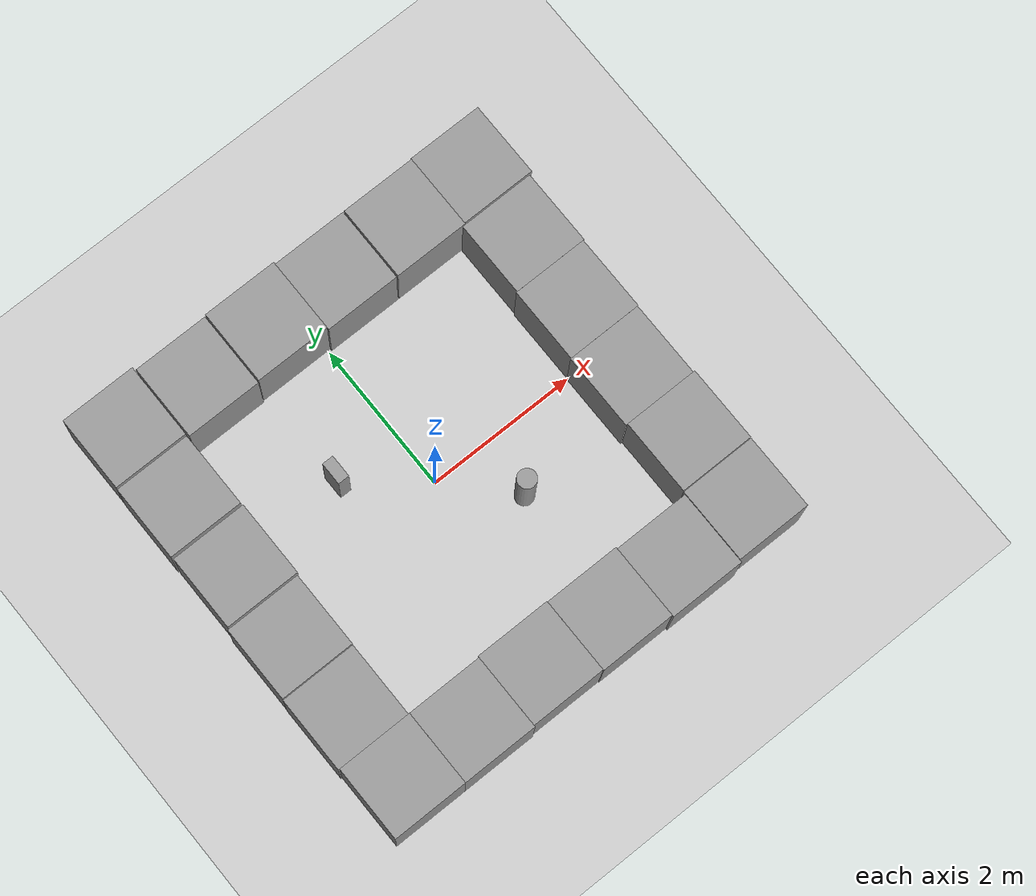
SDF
<sdf version="1.6">
 <world name="default">
  <light name="sun" type="directional">
   <pose>0 0 10 0 -0 0</pose>
   <diffuse>0.8 0.8 0.8 1</diffuse>
   <specular>0.1 0.1 0.1 1</specular>
   <attenuation>
    <range>1000</range>
    <constant>0.9</constant>
    <linear>0.01</linear>
    <quadratic>0.001</quadratic>
   </attenuation>
   <direction>-0.5 0.5 -1</direction>
  </light>
  <model name="ground_plane">
   <static>1</static>
   <link name="link">
    <collision name="collision">
     <geometry><plane><normal>0 0 1</normal><size>100 100</size></plane></geometry>
     <surface><friction><ode><mu>100</mu><mu2>50</mu2></ode></friction></surface>
    </collision>
    <visual name="visual">
     <cast_shadows>0</cast_shadows>
     <geometry><plane><normal>0 0 1</normal><size>100 100</size></plane></geometry>
     <material>
      <script><uri>file://media/materials/scripts/gazebo.material</uri><name>Gazebo/Grey</name></script>
     </material>
    </visual>
   </link>
  </model>
  <gravity>0 0 -9.8</gravity>
  <magnetic_field>6e-06 2.3e-05 -4.2e-05</magnetic_field>
  <atmosphere type="adiabatic"/>
  <physics name="default_physics" default="0" type="ode">
   <max_step_size>0.001</max_step_size>
   <real_time_factor>1</real_time_factor>
   <real_time_update_rate>1000</real_time_update_rate>
  </physics>
  <scene><ambient>0.4 0.4 0.4 1</ambient><background>0.7 0.7 0.7 1</background><shadows>1</shadows></scene>
  <spherical_coordinates>
   <surface_model>EARTH_WGS84</surface_model>
   <latitude_deg>0</latitude_deg>
   <longitude_deg>0</longitude_deg>
   <elevation>0</elevation>
   <heading_deg>0</heading_deg>
  </spherical_coordinates>
  <model name="unit_box_0_3">
   <pose>-2.49478 2.56753 0.499995 0 1e-05 0</pose>
   <link name="link">
    <inertial>
     <mass>1</mass>
     <inertia>
      <ixx>0.166667</ixx>
      <ixy>0</ixy>
      <ixz>0</ixz>
      <iyy>0.166667</iyy>
      <iyz>0</iyz>
      <izz>0.166667</izz>
     </inertia>
    </inertial>
    <collision name="collision"><geometry><box><size>1 1 1</size></box></geometry></collision>
    <visual name="visual">
     <geometry><box><size>1 1 1</size></box></geometry>
     <material>
      <script><name>Gazebo/Grey</name><uri>file://media/materials/scripts/gazebo.material</uri></script>
     </material>
    </visual>
   </link>
  </model>
  <model name="unit_box_0_4">
   <pose>-2.50034 1.54256 0.499995 -1e-05 0 0</pose>
   <link name="link">
    <inertial>
     <mass>1</mass>
     <inertia>
      <ixx>0.166667</ixx>
      <ixy>0</ixy>
      <ixz>0</ixz>
      <iyy>0.166667</iyy>
      <iyz>0</iyz>
      <izz>0.166667</izz>
     </inertia>
    </inertial>
    <collision name="collision"><geometry><box><size>1 1 1</size></box></geometry></collision>
    <visual name="visual">
     <geometry><box><size>1 1 1</size></box></geometry>
     <material>
      <script><name>Gazebo/Grey</name><uri>file://media/materials/scripts/gazebo.material</uri></script>
     </material>
    </visual>
   </link>
  </model>
  <model name="unit_box_0_5">
   <pose>-2.4905 0.508767 0.499995 0 1e-05 0</pose>
   <link name="link">
    <inertial>
     <mass>1</mass>
     <inertia>
      <ixx>0.166667</ixx>
      <ixy>0</ixy>
      <ixz>0</ixz>
      <iyy>0.166667</iyy>
      <iyz>0</iyz>
      <izz>0.166667</izz>
     </inertia>
    </inertial>
    <collision name="collision"><geometry><box><size>1 1 1</size></box></geometry></collision>
    <visual name="visual">
     <geometry><box><size>1 1 1</size></box></geometry>
     <material>
      <script><name>Gazebo/Grey</name><uri>file://media/materials/scripts/gazebo.material</uri></script>
     </material>
    </visual>
   </link>
  </model>
  <model name="unit_box_0_6">
   <pose>-2.51145 -0.51514 0.499995 -1e-05 0 0</pose>
   <link name="link">
    <inertial>
     <mass>1</mass>
     <inertia>
      <ixx>0.166667</ixx>
      <ixy>0</ixy>
      <ixz>0</ixz>
      <iyy>0.166667</iyy>
      <iyz>0</iyz>
      <izz>0.166667</izz>
     </inertia>
    </inertial>
    <collision name="collision"><geometry><box><size>1 1 1</size></box></geometry></collision>
    <visual name="visual">
     <geometry><box><size>1 1 1</size></box></geometry>
     <material>
      <script><name>Gazebo/Grey</name><uri>file://media/materials/scripts/gazebo.material</uri></script>
     </material>
    </visual>
   </link>
  </model>
  <model name="unit_box_0_7">
   <pose>-2.51719 -1.52792 0.499995 -1e-05 -0 0.000211</pose>
   <link name="link">
    <inertial>
     <mass>1</mass>
     <inertia>
      <ixx>0.166667</ixx>
      <ixy>0</ixy>
      <ixz>0</ixz>
      <iyy>0.166667</iyy>
      <iyz>0</iyz>
      <izz>0.166667</izz>
     </inertia>
    </inertial>
    <collision name="collision"><geometry><box><size>1 1 1</size></box></geometry></collision>
    <visual name="visual">
     <geometry><box><size>1 1 1</size></box></geometry>
     <material>
      <script><name>Gazebo/Grey</name><uri>file://media/materials/scripts/gazebo.material</uri></script>
     </material>
    </visual>
   </link>
  </model>
  <model name="unit_box_0_8">
   <pose>-1.47677 2.52007 0.499995 -1e-05 0 0</pose>
   <link name="link">
    <inertial>
     <mass>1</mass>
     <inertia>
      <ixx>0.166667</ixx>
      <ixy>0</ixy>
      <ixz>0</ixz>
      <iyy>0.166667</iyy>
      <iyz>0</iyz>
      <izz>0.166667</izz>
     </inertia>
    </inertial>
    <collision name="collision"><geometry><box><size>1 1 1</size></box></geometry></collision>
    <visual name="visual">
     <geometry><box><size>1 1 1</size></box></geometry>
     <material>
      <script><name>Gazebo/Grey</name><uri>file://media/materials/scripts/gazebo.material</uri></script>
     </material>
    </visual>
   </link>
  </model>
  <model name="unit_box_0_9">
   <pose>-0.459056 2.53745 0.499995 0 1e-05 -0.000619</pose>
   <link name="link">
    <inertial>
     <mass>1</mass>
     <inertia>
      <ixx>0.166667</ixx>
      <ixy>0</ixy>
      <ixz>0</ixz>
      <iyy>0.166667</iyy>
      <iyz>0</iyz>
      <izz>0.166667</izz>
     </inertia>
    </inertial>
    <collision name="collision"><geometry><box><size>1 1 1</size></box></geometry></collision>
    <visual name="visual">
     <geometry><box><size>1 1 1</size></box></geometry>
     <material>
      <script><name>Gazebo/Grey</name><uri>file://media/materials/scripts/gazebo.material</uri></script>
     </material>
    </visual>
   </link>
  </model>
  <model name="unit_box_0_10">
   <pose>0.540918 2.50827 0.499995 -0 -1e-05 -0.000618</pose>
   <link name="link">
    <inertial>
     <mass>1</mass>
     <inertia>
      <ixx>0.166667</ixx>
      <ixy>0</ixy>
      <ixz>0</ixz>
      <iyy>0.166667</iyy>
      <iyz>0</iyz>
      <izz>0.166667</izz>
     </inertia>
    </inertial>
    <collision name="collision"><geometry><box><size>1 1 1</size></box></geometry></collision>
    <visual name="visual">
     <geometry><box><size>1 1 1</size></box></geometry>
     <material>
      <script><name>Gazebo/Grey</name><uri>file://media/materials/scripts/gazebo.material</uri></script>
     </material>
    </visual>
   </link>
  </model>
  <model name="unit_box_0_11">
   <pose>1.55985 2.50928 0.499995 0 1e-05 -5e-06</pose>
   <link name="link">
    <inertial>
     <mass>1</mass>
     <inertia>
      <ixx>0.166667</ixx>
      <ixy>0</ixy>
      <ixz>0</ixz>
      <iyy>0.166667</iyy>
      <iyz>0</iyz>
      <izz>0.166667</izz>
     </inertia>
    </inertial>
    <collision name="collision"><geometry><box><size>1 1 1</size></box></geometry></collision>
    <visual name="visual">
     <geometry><box><size>1 1 1</size></box></geometry>
     <material>
      <script><name>Gazebo/Grey</name><uri>file://media/materials/scripts/gazebo.material</uri></script>
     </material>
    </visual>
   </link>
  </model>
  <model name="unit_box_0_12">
   <pose>2.55985 2.52006 0.499995 0 -1e-05 -5e-06</pose>
   <link name="link">
    <inertial>
     <mass>1</mass>
     <inertia>
      <ixx>0.166667</ixx>
      <ixy>0</ixy>
      <ixz>0</ixz>
      <iyy>0.166667</iyy>
      <iyz>0</iyz>
      <izz>0.166667</izz>
     </inertia>
    </inertial>
    <collision name="collision"><geometry><box><size>1 1 1</size></box></geometry></collision>
    <visual name="visual">
     <geometry><box><size>1 1 1</size></box></geometry>
     <material>
      <script><name>Gazebo/Grey</name><uri>file://media/materials/scripts/gazebo.material</uri></script>
     </material>
    </visual>
   </link>
  </model>
  <model name="unit_box_0_13">
   <pose>2.51187 1.50075 0.499995 -1e-05 -0 0.000274</pose>
   <link name="link">
    <inertial>
     <mass>1</mass>
     <inertia>
      <ixx>0.166667</ixx>
      <ixy>0</ixy>
      <ixz>0</ixz>
      <iyy>0.166667</iyy>
      <iyz>0</iyz>
      <izz>0.166667</izz>
     </inertia>
    </inertial>
    <collision name="collision"><geometry><box><size>1 1 1</size></box></geometry></collision>
    <visual name="visual">
     <geometry><box><size>1 1 1</size></box></geometry>
     <material>
      <script><name>Gazebo/Grey</name><uri>file://media/materials/scripts/gazebo.material</uri></script>
     </material>
    </visual>
   </link>
  </model>
  <model name="unit_box_0_14">
   <pose>-2.50079 -2.52804 0.499995 -1e-05 -0 -2.8e-05</pose>
   <link name="link">
    <inertial>
     <mass>1</mass>
     <inertia>
      <ixx>0.166667</ixx>
      <ixy>0</ixy>
      <ixz>0</ixz>
      <iyy>0.166667</iyy>
      <iyz>0</iyz>
      <izz>0.166667</izz>
     </inertia>
    </inertial>
    <collision name="collision"><geometry><box><size>1 1 1</size></box></geometry></collision>
    <visual name="visual">
     <geometry><box><size>1 1 1</size></box></geometry>
     <material>
      <script><name>Gazebo/Grey</name><uri>file://media/materials/scripts/gazebo.material</uri></script>
     </material>
    </visual>
   </link>
  </model>
  <model name="unit_box_0_15">
   <pose>-1.50077 -2.52759 0.499995 1e-05 0 -5.4e-05</pose>
   <link name="link">
    <inertial>
     <mass>1</mass>
     <inertia>
      <ixx>0.166667</ixx>
      <ixy>0</ixy>
      <ixz>0</ixz>
      <iyy>0.166667</iyy>
      <iyz>0</iyz>
      <izz>0.166667</izz>
     </inertia>
    </inertial>
    <collision name="collision"><geometry><box><size>1 1 1</size></box></geometry></collision>
    <visual name="visual">
     <geometry><box><size>1 1 1</size></box></geometry>
     <material>
      <script><name>Gazebo/Grey</name><uri>file://media/materials/scripts/gazebo.material</uri></script>
     </material>
    </visual>
   </link>
  </model>
  <model name="unit_box_0_16">
   <pose>2.49728 0.500648 0.5 0 -0 0.000249</pose>
   <link name="link">
    <inertial>
     <mass>1</mass>
     <inertia>
      <ixx>0.166667</ixx>
      <ixy>0</ixy>
      <ixz>0</ixz>
      <iyy>0.166667</iyy>
      <iyz>0</iyz>
      <izz>0.166667</izz>
     </inertia>
    </inertial>
    <collision name="collision"><geometry><box><size>1 1 1</size></box></geometry></collision>
    <visual name="visual">
     <geometry><box><size>1 1 1</size></box></geometry>
     <material>
      <script><name>Gazebo/Grey</name><uri>file://media/materials/scripts/gazebo.material</uri></script>
     </material>
    </visual>
   </link>
  </model>
  <model name="unit_box_0_17">
   <pose>2.48693 -0.499603 0.499995 0 -1e-05 0.000261</pose>
   <link name="link">
    <inertial>
     <mass>1</mass>
     <inertia>
      <ixx>0.166667</ixx>
      <ixy>0</ixy>
      <ixz>0</ixz>
      <iyy>0.166667</iyy>
      <iyz>0</iyz>
      <izz>0.166667</izz>
     </inertia>
    </inertial>
    <collision name="collision"><geometry><box><size>1 1 1</size></box></geometry></collision>
    <visual name="visual">
     <geometry><box><size>1 1 1</size></box></geometry>
     <material>
      <script><name>Gazebo/Grey</name><uri>file://media/materials/scripts/gazebo.material</uri></script>
     </material>
    </visual>
   </link>
  </model>
  <model name="unit_box_0_18">
   <pose>2.5109 -1.49967 0.499995 -1e-05 0 0.000308</pose>
   <link name="link">
    <inertial>
     <mass>1</mass>
     <inertia>
      <ixx>0.166667</ixx>
      <ixy>0</ixy>
      <ixz>0</ixz>
      <iyy>0.166667</iyy>
      <iyz>0</iyz>
      <izz>0.166667</izz>
     </inertia>
    </inertial>
    <collision name="collision"><geometry><box><size>1 1 1</size></box></geometry></collision>
    <visual name="visual">
     <geometry><box><size>1 1 1</size></box></geometry>
     <material>
      <script><name>Gazebo/Grey</name><uri>file://media/materials/scripts/gazebo.material</uri></script>
     </material>
    </visual>
   </link>
  </model>
  <model name="unit_box_0_19">
   <pose>-0.500739 -2.50908 0.499995 1e-05 -0 -0.000105</pose>
   <link name="link">
    <inertial>
     <mass>1</mass>
     <inertia>
      <ixx>0.166667</ixx>
      <ixy>0</ixy>
      <ixz>0</ixz>
      <iyy>0.166667</iyy>
      <iyz>0</iyz>
      <izz>0.166667</izz>
     </inertia>
    </inertial>
    <collision name="collision"><geometry><box><size>1 1 1</size></box></geometry></collision>
    <visual name="visual">
     <geometry><box><size>1 1 1</size></box></geometry>
     <material>
      <script><name>Gazebo/Grey</name><uri>file://media/materials/scripts/gazebo.material</uri></script>
     </material>
    </visual>
   </link>
  </model>
  <model name="unit_box_0_20">
   <pose>0.499323 -2.51938 0.499995 0 1e-05 -0.000206</pose>
   <link name="link">
    <inertial>
     <mass>1</mass>
     <inertia>
      <ixx>0.166667</ixx>
      <ixy>0</ixy>
      <ixz>0</ixz>
      <iyy>0.166667</iyy>
      <iyz>0</iyz>
      <izz>0.166667</izz>
     </inertia>
    </inertial>
    <collision name="collision"><geometry><box><size>1 1 1</size></box></geometry></collision>
    <visual name="visual">
     <geometry><box><size>1 1 1</size></box></geometry>
     <material>
      <script><name>Gazebo/Grey</name><uri>file://media/materials/scripts/gazebo.material</uri></script>
     </material>
    </visual>
   </link>
  </model>
  <model name="unit_box_0_21">
   <pose>1.49938 -2.54244 0.499995 1e-05 -0 -0.00027</pose>
   <link name="link">
    <inertial>
     <mass>1</mass>
     <inertia>
      <ixx>0.166667</ixx>
      <ixy>0</ixy>
      <ixz>0</ixz>
      <iyy>0.166667</iyy>
      <iyz>0</iyz>
      <izz>0.166667</izz>
     </inertia>
    </inertial>
    <collision name="collision"><geometry><box><size>1 1 1</size></box></geometry></collision>
    <visual name="visual">
     <geometry><box><size>1 1 1</size></box></geometry>
     <material>
      <script><name>Gazebo/Grey</name><uri>file://media/materials/scripts/gazebo.material</uri></script>
     </material>
    </visual>
   </link>
  </model>
  <model name="unit_box_0_22">
   <pose>2.50447 -2.51003 0.499995 -1e-05 0 0</pose>
   <link name="link">
    <inertial>
     <mass>1</mass>
     <inertia>
      <ixx>0.166667</ixx>
      <ixy>0</ixy>
      <ixz>0</ixz>
      <iyy>0.166667</iyy>
      <iyz>0</iyz>
      <izz>0.166667</izz>
     </inertia>
    </inertial>
    <collision name="collision"><geometry><box><size>1 1 1</size></box></geometry></collision>
    <visual name="visual">
     <geometry><box><size>1 1 1</size></box></geometry>
     <material>
      <script><name>Gazebo/Grey</name><uri>file://media/materials/scripts/gazebo.material</uri></script>
     </material>
    </visual>
   </link>
  </model>
  <model name="unit_box_0_23">
   <pose>-0.901368 0.701708 0.405559 1e-06 0 -0.000199</pose>
   <link name="link">
    <inertial>
     <mass>1</mass>
     <inertia>
      <ixx>0.166667</ixx>
      <ixy>0</ixy>
      <ixz>0</ixz>
      <iyy>0.166667</iyy>
      <iyz>0</iyz>
      <izz>0.166667</izz>
     </inertia>
    </inertial>
    <collision name="collision"><geometry><box><size>0.151309 0.30041 0.811118</size></box></geometry></collision>
    <visual name="visual">
     <geometry><box><size>0.151309 0.30041 0.811118</size></box></geometry>
     <material>
      <script><name>Gazebo/Grey</name><uri>file://media/materials/scripts/gazebo.material</uri></script>
     </material>
    </visual>
   </link>
  </model>
  <model name="unit_cylinder_0">
   <pose>0.713442 -0.774785 0.49999 0 0 -1e-06</pose>
   <link name="link">
    <inertial>
     <mass>1</mass>
     <inertia><ixx>0.145833</ixx><ixy>0</ixy><ixz>0</ixz><iyy>0.145833</iyy><iyz>0</iyz><izz>0.125</izz></inertia>
    </inertial>
    <collision name="collision">
     <geometry><cylinder><radius>0.123086</radius><length>1</length></cylinder></geometry>
    </collision>
    <visual name="visual">
     <geometry><cylinder><radius>0.123086</radius><length>1</length></cylinder></geometry>
     <material>
      <script><name>Gazebo/Grey</name><uri>file://media/materials/scripts/gazebo.material</uri></script>
     </material>
    </visual>
   </link>
  </model>
 </world>
</sdf>
